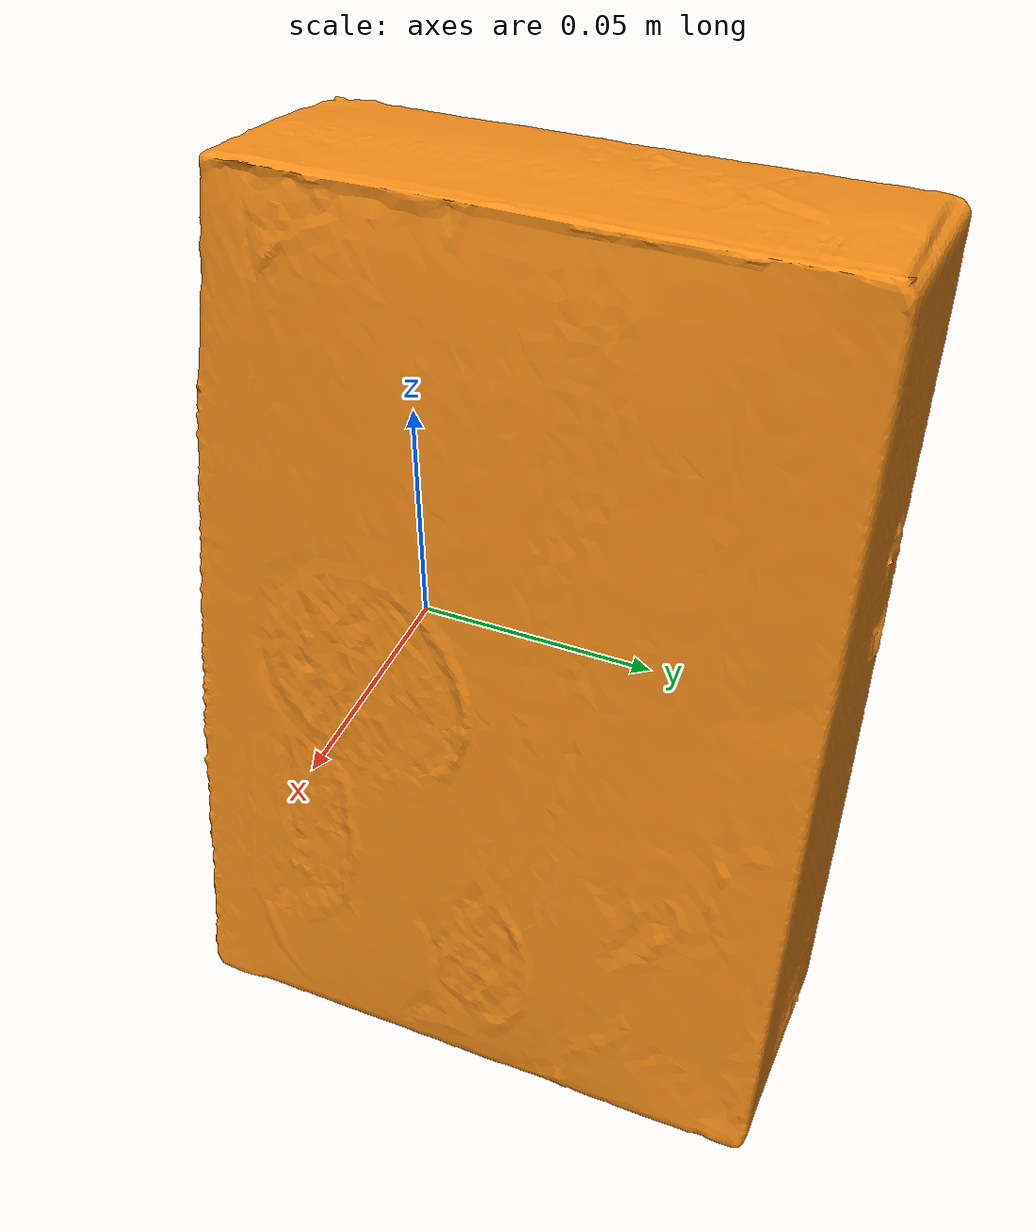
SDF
<?xml version='1.0'?>
<sdf version="1.4">
  <model name="SoftCakeOrange">
    <static>false</static>
    <link name="link">
      <inertial>
        <pose>0.0010199055021157613 0.027397621443982407 0.0012586658250225357 0.0048432806492740045 0.20822221152012937 -3.139436434364712</pose>
        <mass>0.13910506650065055</mass>
        <inertia>
          <ixx>0.0006006196692942602</ixx>
          <ixy>-7.163907161462961e-20</ixy>
          <ixz>-7.53224420521993e-20</ixz>
          <iyy>0.0004491719221521715</iyy>
          <iyz>-3.0199083302102297e-19</iyz>
          <izz>0.00022651756509566135</izz>
        </inertia>
      </inertial>
      <collision name="collision">
        <geometry>
          <mesh>
            <!-- Use a downsampled mesh for collisions -->
            <uri>model:///SoftCakeOrange/SoftCakeOrange_250_collision.obj</uri>
	        </mesh>
        </geometry>
        <surface>
      </surface>
      </collision>
      <visual name="visual">
        <geometry>
          <mesh>
            <uri>model:///SoftCakeOrange/SoftCakeOrange_25k_tex.obj</uri>
	        </mesh>
        </geometry>
        <material>
          <script>
            <uri>model:///SoftCakeOrange/SoftCakeOrange.material</uri>
            <name>SoftCakeOrange</name>
          </script>
        </material>
      </visual>
    </link>
  </model>
</sdf>
